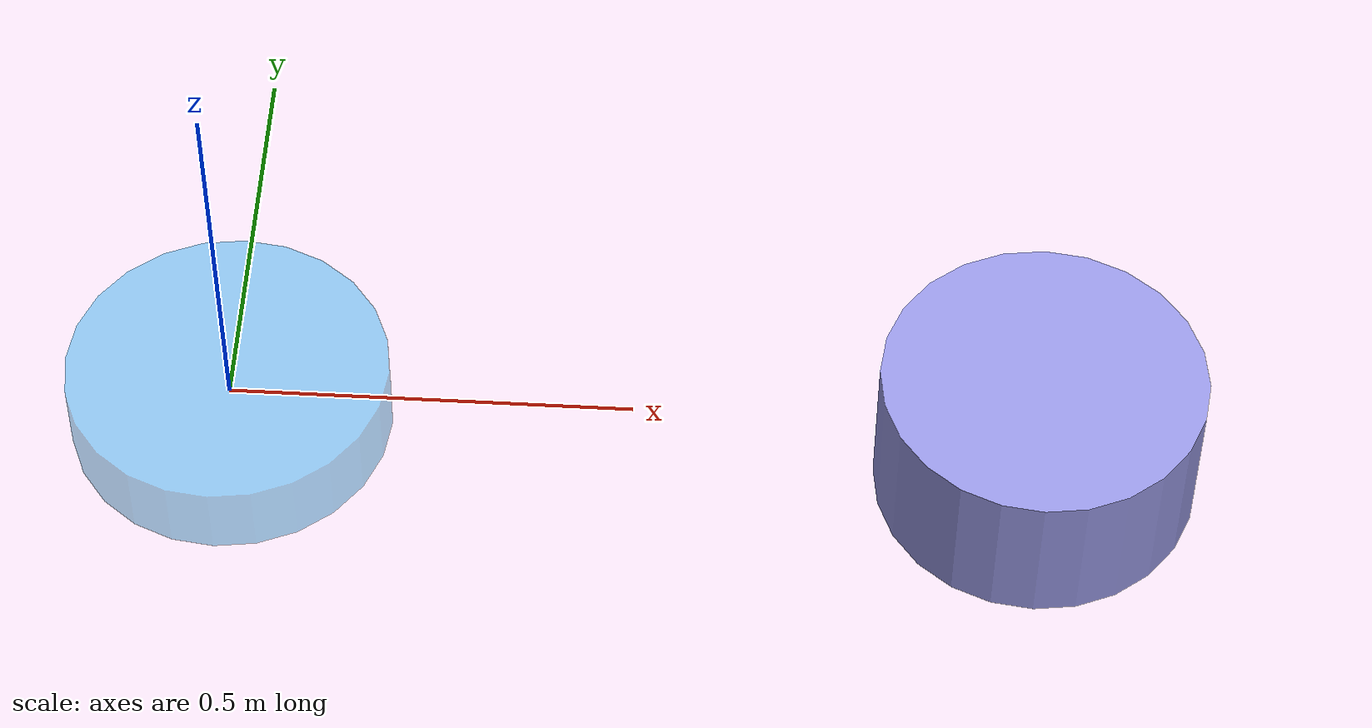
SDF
<?xml version="1.0" encoding="UTF-8"?>
<sdf version="1.7">
  <world name="default">
    <plugin
      filename="ignition-gazebo-physics-system"
      name="ignition::gazebo::systems::Physics">
    </plugin>
    <plugin
      filename="ignition-gazebo-scene-broadcaster-system"
      name="ignition::gazebo::systems::SceneBroadcaster">
    </plugin>
    <light type="directional" name="sun">
      <pose>0 0 10 0 0 0</pose>
      <direction>-0.5 0.1 -0.9</direction>
    </light>

    <model name="ground_plane">
      <static>true</static>
      <link name="surface">
        <collision name="surface">
          <geometry>
            <plane>
              <normal>0 0 1</normal>
              <size>2 2</size>
            </plane>
          </geometry>
        </collision>
      </link>
    </model>

    <model name="cylinder1" canonical_link="base_link">
      <!--
        link0_outer is already resting on the ground plane, so it shouldn't
        move at all
      -->
      <link name="link0_outer">
        <pose>1 0 0 0 0 0</pose>
        <collision name="collision_disk">
          <geometry>
            <cylinder>
              <radius>0.2</radius>
              <length>0.2</length>
            </cylinder>
          </geometry>
        </collision>
        <visual name="visual1">
          <geometry>
            <cylinder>
              <radius>0.2</radius>
              <length>0.2</length>
            </cylinder>
          </geometry>
          <material>
            <ambient>0.6 0.6 0.9 1</ambient>
            <diffuse>0.6 0.6 0.9 1</diffuse>
            <specular>1.0 1.0 1.0 1</specular>
          </material>
        </visual>
      </link>

      <link name="base_link">
        <visual name="visual1">
          <geometry>
            <cylinder>
              <radius>0.2</radius>
              <length>0.1</length>
            </cylinder>
          </geometry>
          <material>
            <ambient>0.0 0.6 0.9 0.4</ambient>
            <diffuse>0.0 0.6 0.9 0.4</diffuse>
          </material>
        </visual>
      </link>
    </model>

    <!-- TODO(adlarkin) add a similar test with nested models? -->
  </world>
</sdf>
